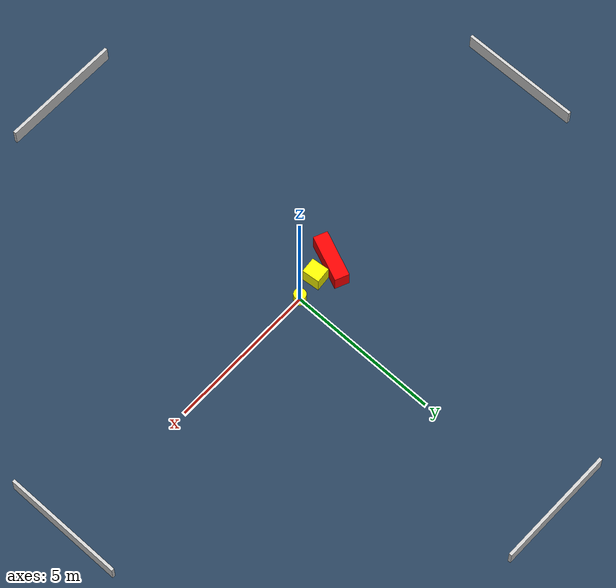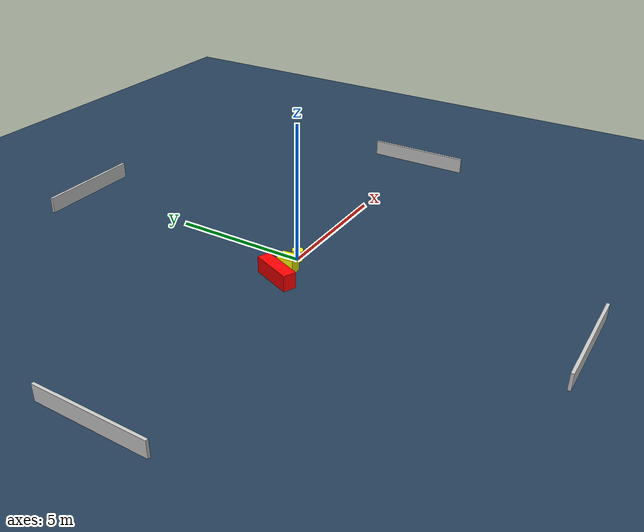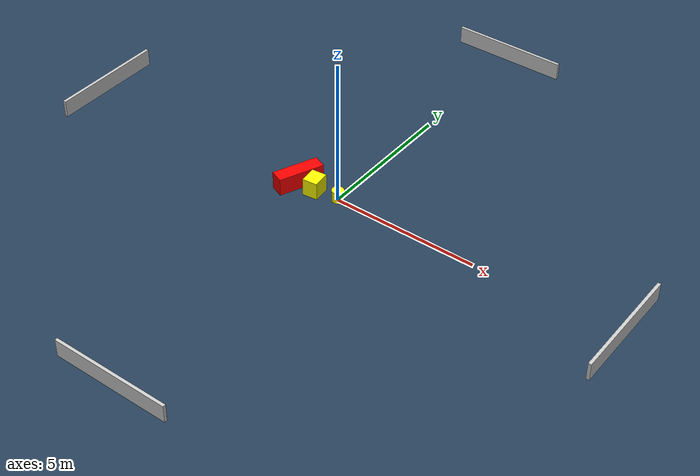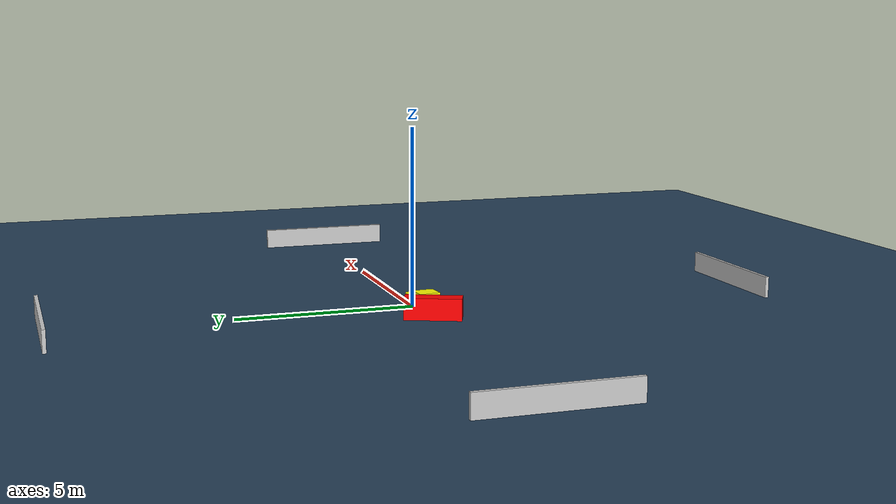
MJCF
<?xml version="1.0" ?>
<mujoco model="generated_environment">
  <option timestep="0.01" integrator="RK4" cone="elliptic"/>
  <default>
    <geom density="1"/>
  </default>
  <asset>
    <texture builtin="gradient" height="3072" name="skybox" rgb1="0.3 0.5 0.7" rgb2="0 0 0" type="skybox" width="512"/>
    <texture builtin="checker" height="300" name="groundplane" rgb1="0.2 0.3 0.4" rgb2="0.1 0.2 0.3" type="2d" width="300"/>
    <material name="groundplane" reflectance="0.2" texrepeat="5 5" texture="groundplane"/>
  </asset>
  <worldbody>
    <light dir="0 0 -1" directional="true" pos="0 0 1.5"/>
    <geom condim="3" friction="0.5 0.005 0.001" material="groundplane" name="floor" pos="0 0 0" size="0 0 0.05" type="plane"/>
    <body name="walls">
      <geom name="wall_1" condim="4" pos="-10.0 0.0 0.3" rgba="0.800000011920929 0.800000011920929 0.800000011920929 1.0" size="0.05 2.0 0.3" type="box"/>
      <geom name="wall_2" condim="4" pos="10.0 0.0 0.3" rgba="0.800000011920929 0.800000011920929 0.800000011920929 1.0" size="0.05 2.0 0.3" type="box"/>
      <geom name="wall_3" condim="4" pos="0.0 -10.0 0.3" rgba="0.800000011920929 0.800000011920929 0.800000011920929 1.0" size="2.0 0.05 0.3" type="box"/>
      <geom name="wall_4" condim="4" pos="0.0 10.0 0.3" rgba="0.800000011920929 0.800000011920929 0.800000011920929 1.0" size="2.0 0.05 0.3" type="box"/>
    </body>
    <body name="robot">
      <joint name="joint_x" type="slide" pos="0 0 0" axis="1 0 0"/>
      <joint name="joint_y" type="slide" pos="0 0 0" axis="0 1 0"/>
      <geom name="robot" type="cylinder" pos="0.0 0.0 0.2" size="0.2 0.2 0.0" mass="5.0" friction="1.0 0.005 0.0001" condim="4" rgba="1.0 1.0 0.0 1.0"/>
    </body>
    <body name="obstacle_1_movable">
      <geom name="obstacle_1_movable" condim="4" pos="-0.8226341440843473 -0.12651152422261627 0.3" euler="0 0 185.74576865857043" friction="0.0 0.005 0.001" rgba="1.0 1.0 0.0 1.0" size="0.2565790048369727 0.2940968027526564 0.3" type="box" mass="0.1"/>
      <joint type="free"/>
    </body>
    <body name="obstacle_2_static">
      <geom name="obstacle_2_static" condim="4" pos="-1.4873235996290908 -0.10485216395365994 0.3" euler="0 0 67.16199045454051" friction="0.0 0.005 0.001" rgba="1.0 0.0 0.0 1.0" size="0.7826153119077504 0.23850348329456683 0.3" type="box"/>
    </body>
  </worldbody>
  <actuator>
    <motor name="actuator_x" joint="joint_x" gear="1" ctrlrange="-1 1"/>
    <motor name="actuator_y" joint="joint_y" gear="1" ctrlrange="-1 1"/>
  </actuator>
</mujoco>
